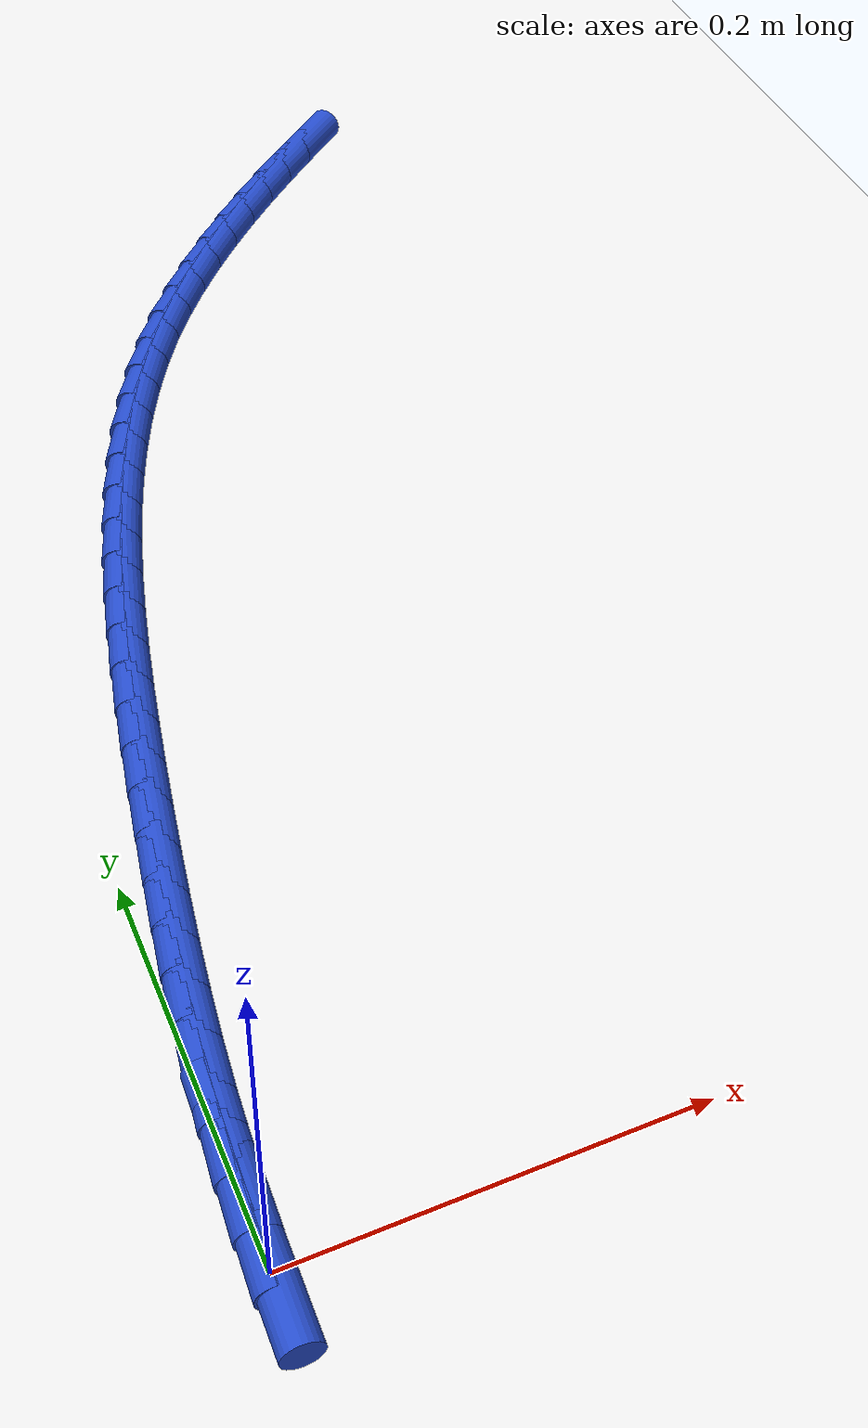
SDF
<sdf version="1.6">
 <world name="default">
  <model name="ground_plane">
   <static>1</static>
   <link name="link">
    <collision name="collision">
     <geometry><plane><normal>0 0 1</normal><size>100 100</size></plane></geometry>
     <surface><friction><ode><mu>100</mu><mu2>50</mu2></ode></friction></surface>
    </collision>
    <visual name="visual">
     <cast_shadows>0</cast_shadows>
     <geometry><plane><normal>0 0 1</normal><size>100 100</size></plane></geometry>
     <material>
      <script><uri>file://media/materials/scripts/gazebo.material</uri><name>Gazebo/WhiteGlow</name></script>
     </material>
    </visual>
   </link>
  </model>
  <model name="line">
   <link name="link_1">
    <pose>0.0005900893197626238 0.02519484647066021 0.01 0 1.57 1.5175315877258198</pose>
    <collision name="collision">
     <geometry><cylinder><radius>0.01</radius><length>0.08</length></cylinder></geometry>
    </collision>
    <visual name="visual">
     <material>
      <script><name>Gazebo/Blue</name><uri>file://media/materials/scripts/gazebo.material</uri></script>
     </material>
     <geometry><cylinder><radius>0.01</radius><length>0.08</length></cylinder></geometry>
    </visual>
   </link>
   <link name="link_2">
    <pose>0.0019326716595127892 0.05037684169571538 0.01 0 1.57 1.4906337759523802</pose>
    <collision name="collision">
     <geometry><cylinder><radius>0.01</radius><length>0.08</length></cylinder></geometry>
    </collision>
    <visual name="visual">
     <material>
      <script><name>Gazebo/Blue</name><uri>file://media/materials/scripts/gazebo.material</uri></script>
     </material>
     <geometry><cylinder><radius>0.01</radius><length>0.08</length></cylinder></geometry>
    </visual>
   </link>
   <link name="link_3">
    <pose>0.003955560160450149 0.07555759719595234 0.01 0 1.57 1.4667317699135582</pose>
    <collision name="collision">
     <geometry><cylinder><radius>0.01</radius><length>0.08</length></cylinder></geometry>
    </collision>
    <visual name="visual">
     <material>
      <script><name>Gazebo/Blue</name><uri>file://media/materials/scripts/gazebo.material</uri></script>
     </material>
     <geometry><cylinder><radius>0.01</radius><length>0.08</length></cylinder></geometry>
    </visual>
   </link>
   <link name="link_4">
    <pose>0.006586567963774382 0.10074872449215784 0.01 0 1.57 1.4458438301383736</pose>
    <collision name="collision">
     <geometry><cylinder><radius>0.01</radius><length>0.08</length></cylinder></geometry>
    </collision>
    <visual name="visual">
     <material>
      <script><name>Gazebo/Blue</name><uri>file://media/materials/scripts/gazebo.material</uri></script>
     </material>
     <geometry><cylinder><radius>0.01</radius><length>0.08</length></cylinder></geometry>
    </visual>
   </link>
   <link name="link_5">
    <pose>0.009753508210685173 0.12596183510511866 0.01 0 1.57 1.4279672610065628</pose>
    <collision name="collision">
     <geometry><cylinder><radius>0.01</radius><length>0.08</length></cylinder></geometry>
    </collision>
    <visual name="visual">
     <material>
      <script><name>Gazebo/Blue</name><uri>file://media/materials/scripts/gazebo.material</uri></script>
     </material>
     <geometry><cylinder><radius>0.01</radius><length>0.08</length></cylinder></geometry>
    </visual>
   </link>
   <link name="link_6">
    <pose>0.013384194042382214 0.1512085405556217 0.01 0 1.57 1.413084225599685</pose>
    <collision name="collision">
     <geometry><cylinder><radius>0.01</radius><length>0.08</length></cylinder></geometry>
    </collision>
    <visual name="visual">
     <material>
      <script><name>Gazebo/Blue</name><uri>file://media/materials/scripts/gazebo.material</uri></script>
     </material>
     <geometry><cylinder><radius>0.01</radius><length>0.08</length></cylinder></geometry>
    </visual>
   </link>
   <link name="link_7">
    <pose>0.017406438600065174 0.1765004523644535 0.01 0 1.57 1.4011667552382052</pose>
    <collision name="collision">
     <geometry><cylinder><radius>0.01</radius><length>0.08</length></cylinder></geometry>
    </collision>
    <visual name="visual">
     <material>
      <script><name>Gazebo/Blue</name><uri>file://media/materials/scripts/gazebo.material</uri></script>
     </material>
     <geometry><cylinder><radius>0.01</radius><length>0.08</length></cylinder></geometry>
    </visual>
   </link>
   <link name="link_8">
    <pose>0.021748055024933738 0.20184918205240104 0.01 0 1.57 1.3921808598402106</pose>
    <collision name="collision">
     <geometry><cylinder><radius>0.01</radius><length>0.08</length></cylinder></geometry>
    </collision>
    <visual name="visual">
     <material>
      <script><name>Gazebo/Blue</name><uri>file://media/materials/scripts/gazebo.material</uri></script>
     </material>
     <geometry><cylinder><radius>0.01</radius><length>0.08</length></cylinder></geometry>
    </visual>
   </link>
   <link name="link_9">
    <pose>0.026336856458187598 0.22726634114025107 0.01 0 1.57 1.3854232616919095</pose>
    <collision name="collision">
     <geometry><cylinder><radius>0.01</radius><length>0.08</length></cylinder></geometry>
    </collision>
    <visual name="visual">
     <material>
      <script><name>Gazebo/Blue</name><uri>file://media/materials/scripts/gazebo.material</uri></script>
     </material>
     <geometry><cylinder><radius>0.01</radius><length>0.08</length></cylinder></geometry>
    </visual>
   </link>
   <link name="link_10">
    <pose>0.031116711293106804 0.25275536602874654 0.01 0 1.57 1.3768954850194726</pose>
    <collision name="collision">
     <geometry><cylinder><radius>0.01</radius><length>0.08</length></cylinder></geometry>
    </collision>
    <visual name="visual">
     <material>
      <script><name>Gazebo/Blue</name><uri>file://media/materials/scripts/gazebo.material</uri></script>
     </material>
     <geometry><cylinder><radius>0.01</radius><length>0.08</length></cylinder></geometry>
    </visual>
   </link>
   <link name="link_11">
    <pose>0.036127161319846245 0.27827097750205015 0.01 0 1.57 1.3651088504605655</pose>
    <collision name="collision">
     <geometry><cylinder><radius>0.01</radius><length>0.08</length></cylinder></geometry>
    </collision>
    <visual name="visual">
     <material>
      <script><name>Gazebo/Blue</name><uri>file://media/materials/scripts/gazebo.material</uri></script>
     </material>
     <geometry><cylinder><radius>0.01</radius><length>0.08</length></cylinder></geometry>
    </visual>
   </link>
   <link name="link_12">
    <pose>0.041443041089108304 0.3037499257417638 0.01 0 1.57 1.350009877731286</pose>
    <collision name="collision">
     <geometry><cylinder><radius>0.01</radius><length>0.08</length></cylinder></geometry>
    </collision>
    <visual name="visual">
     <material>
      <script><name>Gazebo/Blue</name><uri>file://media/materials/scripts/gazebo.material</uri></script>
     </material>
     <geometry><cylinder><radius>0.01</radius><length>0.08</length></cylinder></geometry>
    </visual>
   </link>
   <link name="link_13">
    <pose>0.04713924096553251 0.3291289325097771 0.01 0 1.57 1.3315191220687965</pose>
    <collision name="collision">
     <geometry><cylinder><radius>0.01</radius><length>0.08</length></cylinder></geometry>
    </collision>
    <visual name="visual">
     <material>
      <script><name>Gazebo/Blue</name><uri>file://media/materials/scripts/gazebo.material</uri></script>
     </material>
     <geometry><cylinder><radius>0.01</radius><length>0.08</length></cylinder></geometry>
    </visual>
   </link>
   <link name="link_14">
    <pose>0.053290651313758416 0.35434471956798036 0.01 0 1.57 1.3095327443610911</pose>
    <collision name="collision">
     <geometry><cylinder><radius>0.01</radius><length>0.08</length></cylinder></geometry>
    </collision>
    <visual name="visual">
     <material>
      <script><name>Gazebo/Blue</name><uri>file://media/materials/scripts/gazebo.material</uri></script>
     </material>
     <geometry><cylinder><radius>0.01</radius><length>0.08</length></cylinder></geometry>
    </visual>
   </link>
   <link name="link_15">
    <pose>0.059972162498425546 0.37933400867826333 0.01 0 1.57 1.2839275367372276</pose>
    <collision name="collision">
     <geometry><cylinder><radius>0.01</radius><length>0.08</length></cylinder></geometry>
    </collision>
    <visual name="visual">
     <material>
      <script><name>Gazebo/Blue</name><uri>file://media/materials/scripts/gazebo.material</uri></script>
     </material>
     <geometry><cylinder><radius>0.01</radius><length>0.08</length></cylinder></geometry>
    </visual>
   </link>
   <link name="link_16">
    <pose>0.06725866488417347 0.4040335216025162 0.01 0 1.57 1.2545676279115732</pose>
    <collision name="collision">
     <geometry><cylinder><radius>0.01</radius><length>0.08</length></cylinder></geometry>
    </collision>
    <visual name="visual">
     <material>
      <script><name>Gazebo/Blue</name><uri>file://media/materials/scripts/gazebo.material</uri></script>
     </material>
     <geometry><cylinder><radius>0.01</radius><length>0.08</length></cylinder></geometry>
    </visual>
   </link>
   <link name="link_17">
    <pose>0.07522504883564168 0.4283799801026286 0.01 0 1.57 1.2213134818227265</pose>
    <collision name="collision">
     <geometry><cylinder><radius>0.01</radius><length>0.08</length></cylinder></geometry>
    </collision>
    <visual name="visual">
     <material>
      <script><name>Gazebo/Blue</name><uri>file://media/materials/scripts/gazebo.material</uri></script>
     </material>
     <geometry><cylinder><radius>0.01</radius><length>0.08</length></cylinder></geometry>
    </visual>
   </link>
   <link name="link_18">
    <pose>0.08394620471746972 0.4523101059404908 0.01 0 1.57 1.1840338181467263</pose>
    <collision name="collision">
     <geometry><cylinder><radius>0.01</radius><length>0.08</length></cylinder></geometry>
    </collision>
    <visual name="visual">
     <material>
      <script><name>Gazebo/Blue</name><uri>file://media/materials/scripts/gazebo.material</uri></script>
     </material>
     <geometry><cylinder><radius>0.01</radius><length>0.08</length></cylinder></geometry>
    </visual>
   </link>
   <link name="link_19">
    <pose>0.09349702289429718 0.4757606208779927 0.01 0 1.57 1.1426209841722084</pose>
    <collision name="collision">
     <geometry><cylinder><radius>0.01</radius><length>0.08</length></cylinder></geometry>
    </collision>
    <visual name="visual">
     <material>
      <script><name>Gazebo/Blue</name><uri>file://media/materials/scripts/gazebo.material</uri></script>
     </material>
     <geometry><cylinder><radius>0.01</radius><length>0.08</length></cylinder></geometry>
    </visual>
   </link>
   <link name="link_20">
    <pose>0.10395239373076355 0.49866824667702436 0.01 0 1.57 1.097010016177212</pose>
    <collision name="collision">
     <geometry><cylinder><radius>0.01</radius><length>0.08</length></cylinder></geometry>
    </collision>
    <visual name="visual">
     <material>
      <script><name>Gazebo/Blue</name><uri>file://media/materials/scripts/gazebo.material</uri></script>
     </material>
     <geometry><cylinder><radius>0.01</radius><length>0.08</length></cylinder></geometry>
    </visual>
   </link>
   <link name="link_21">
    <pose>0.11538720759150844 0.5209697050994757 0.01 0 1.57 1.0472010587833755</pose>
    <collision name="collision">
     <geometry><cylinder><radius>0.01</radius><length>0.08</length></cylinder></geometry>
    </collision>
    <visual name="visual">
     <material>
      <script><name>Gazebo/Blue</name><uri>file://media/materials/scripts/gazebo.material</uri></script>
     </material>
     <geometry><cylinder><radius>0.01</radius><length>0.08</length></cylinder></geometry>
    </visual>
   </link>
   <link name="link_22">
    <pose>0.12787635484117127 0.5426017179072364 0.01 0 1.57 0.9934038232384103</pose>
    <collision name="collision">
     <geometry><cylinder><radius>0.01</radius><length>0.08</length></cylinder></geometry>
    </collision>
    <visual name="visual">
     <material>
      <script><name>Gazebo/Blue</name><uri>file://media/materials/scripts/gazebo.material</uri></script>
     </material>
     <geometry><cylinder><radius>0.01</radius><length>0.08</length></cylinder></geometry>
    </visual>
   </link>
   <link name="link_23">
    <pose>0.14149227389564553 0.5635027232913393 0.01 0 1.57 0.9396531943923616</pose>
    <collision name="collision">
     <geometry><cylinder><radius>0.01</radius><length>0.08</length></cylinder></geometry>
    </collision>
    <visual name="visual">
     <material>
      <script><name>Gazebo/Blue</name><uri>file://media/materials/scripts/gazebo.material</uri></script>
     </material>
     <geometry><cylinder><radius>0.01</radius><length>0.08</length></cylinder></geometry>
    </visual>
   </link>
   <link name="link_24">
    <pose>0.1562289866751136 0.5836660530692439 0.01 0 1.57 0.8907208126565039</pose>
    <collision name="collision">
     <geometry><cylinder><radius>0.01</radius><length>0.08</length></cylinder></geometry>
    </collision>
    <visual name="visual">
     <material>
      <script><name>Gazebo/Blue</name><uri>file://media/materials/scripts/gazebo.material</uri></script>
     </material>
     <geometry><cylinder><radius>0.01</radius><length>0.08</length></cylinder></geometry>
    </visual>
   </link>
   <link name="link_25">
    <pose>0.17198747357145278 0.6031501705954753 0.01 0 1.57 0.8469727180315381</pose>
    <collision name="collision">
     <geometry><cylinder><radius>0.01</radius><length>0.08</length></cylinder></geometry>
    </collision>
    <visual name="visual">
     <material>
      <script><name>Gazebo/Blue</name><uri>file://media/materials/scripts/gazebo.material</uri></script>
     </material>
     <geometry><cylinder><radius>0.01</radius><length>0.08</length></cylinder></geometry>
    </visual>
   </link>
   <link name="link_26">
    <pose>0.18866331117971608 0.6220173220256328 0.01 0 1.57 0.8084007828363696</pose>
    <collision name="collision">
     <geometry><cylinder><radius>0.01</radius><length>0.08</length></cylinder></geometry>
    </collision>
    <visual name="visual">
     <material>
      <script><name>Gazebo/Blue</name><uri>file://media/materials/scripts/gazebo.material</uri></script>
     </material>
     <geometry><cylinder><radius>0.01</radius><length>0.08</length></cylinder></geometry>
    </visual>
   </link>
   <link name="link_27">
    <pose>0.20615207609495673 0.6403297535153155 0.01 0 1.57 0.774922695202649</pose>
    <collision name="collision">
     <geometry><cylinder><radius>0.01</radius><length>0.08</length></cylinder></geometry>
    </collision>
    <visual name="visual">
     <material>
      <script><name>Gazebo/Blue</name><uri>file://media/materials/scripts/gazebo.material</uri></script>
     </material>
     <geometry><cylinder><radius>0.01</radius><length>0.08</length></cylinder></geometry>
    </visual>
   </link>
   <link name="link_28">
    <pose>0.2243493449122274 0.6581497112201221 0.01 0 1.57 0.746413307049353</pose>
    <collision name="collision">
     <geometry><cylinder><radius>0.01</radius><length>0.08</length></cylinder></geometry>
    </collision>
    <visual name="visual">
     <material>
      <script><name>Gazebo/Blue</name><uri>file://media/materials/scripts/gazebo.material</uri></script>
     </material>
     <geometry><cylinder><radius>0.01</radius><length>0.08</length></cylinder></geometry>
    </visual>
   </link>
   <link name="link_29">
    <pose>0.24315069422658128 0.6755394412956518 0.01 0 1.57 0.7227301949084424</pose>
    <collision name="collision">
     <geometry><cylinder><radius>0.01</radius><length>0.08</length></cylinder></geometry>
    </collision>
    <visual name="visual">
     <material>
      <script><name>Gazebo/Blue</name><uri>file://media/materials/scripts/gazebo.material</uri></script>
     </material>
     <geometry><cylinder><radius>0.01</radius><length>0.08</length></cylinder></geometry>
    </visual>
   </link>
   <link name="link_30">
    <pose>0.26245170063307144 0.6925611898975038 0.01 0 1.57 0.7037333828109048</pose>
    <collision name="collision">
     <geometry><cylinder><radius>0.01</radius><length>0.08</length></cylinder></geometry>
    </collision>
    <visual name="visual">
     <material>
      <script><name>Gazebo/Blue</name><uri>file://media/materials/scripts/gazebo.material</uri></script>
     </material>
     <geometry><cylinder><radius>0.01</radius><length>0.08</length></cylinder></geometry>
    </visual>
   </link>
   <link name="link_31">
    <pose>0.28214794072675065 0.7092772031812767 0.01 0 1.57 0.6892999257215536</pose>
    <collision name="collision">
     <geometry><cylinder><radius>0.01</radius><length>0.08</length></cylinder></geometry>
    </collision>
    <visual name="visual">
     <material>
      <script><name>Gazebo/Blue</name><uri>file://media/materials/scripts/gazebo.material</uri></script>
     </material>
     <geometry><cylinder><radius>0.01</radius><length>0.08</length></cylinder></geometry>
    </visual>
   </link>
   <link name="link_270">
    <pose>-3.8163916471489756e-17 8.326672684688674e-17 0.01 0 1.57 1.5466030622406377</pose>
    <collision name="collision">
     <geometry><cylinder><radius>0.01</radius><length>0.08</length></cylinder></geometry>
    </collision>
    <visual name="visual">
     <material>
      <script><name>Gazebo/Blue</name><uri>file://media/materials/scripts/gazebo.material</uri></script>
     </material>
     <geometry><cylinder><radius>0.01</radius><length>0.08</length></cylinder></geometry>
    </visual>
   </link>
   <link name="link_271">
    <pose>0.000609599714505896 0.025192167544755072 0.01 0 1.57 1.5120815193800194</pose>
    <collision name="collision">
     <geometry><cylinder><radius>0.01</radius><length>0.08</length></cylinder></geometry>
    </collision>
    <visual name="visual">
     <material>
      <script><name>Gazebo/Blue</name><uri>file://media/materials/scripts/gazebo.material</uri></script>
     </material>
     <geometry><cylinder><radius>0.01</radius><length>0.08</length></cylinder></geometry>
    </visual>
   </link>
   <link name="link_272">
    <pose>0.0020887548174589226 0.05035541028847147 0.01 0 1.57 1.5293398464945025</pose>
    <collision name="collision">
     <geometry><cylinder><radius>0.01</radius><length>0.08</length></cylinder></geometry>
    </collision>
    <visual name="visual">
     <material>
      <script><name>Gazebo/Blue</name><uri>file://media/materials/scripts/gazebo.material</uri></script>
     </material>
     <geometry><cylinder><radius>0.01</radius><length>0.08</length></cylinder></geometry>
    </visual>
   </link>
  </model>
 </world>
</sdf>
